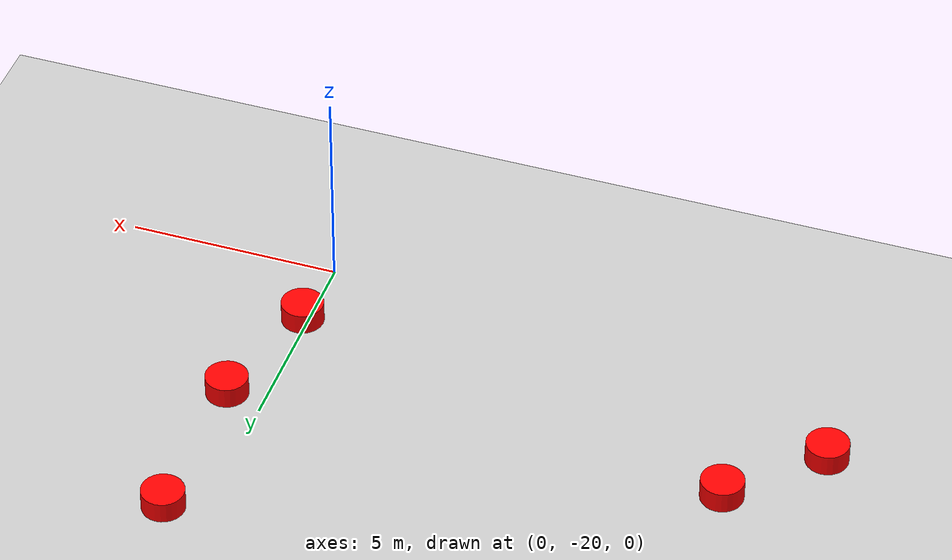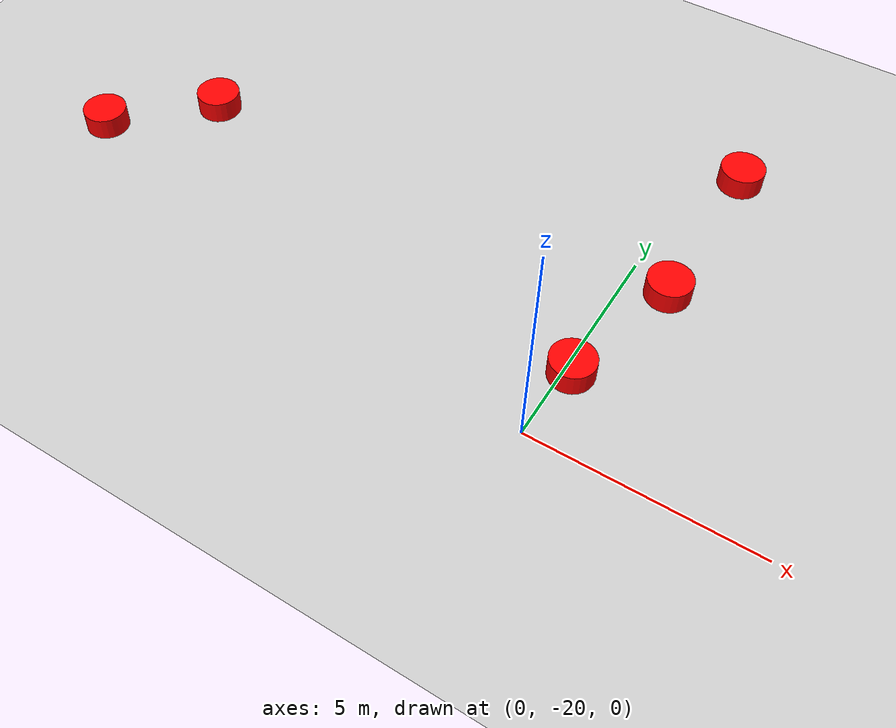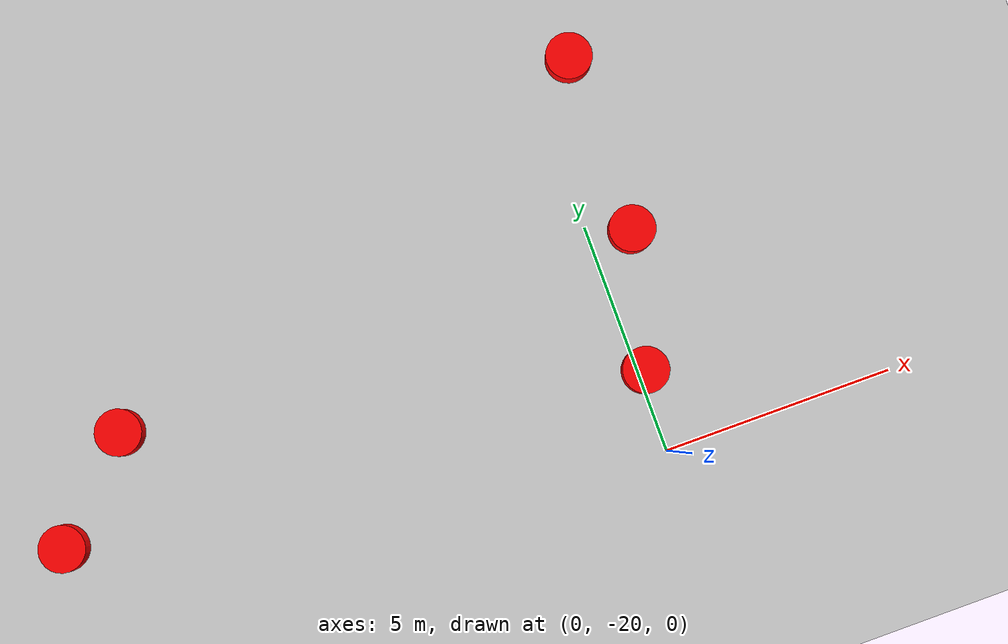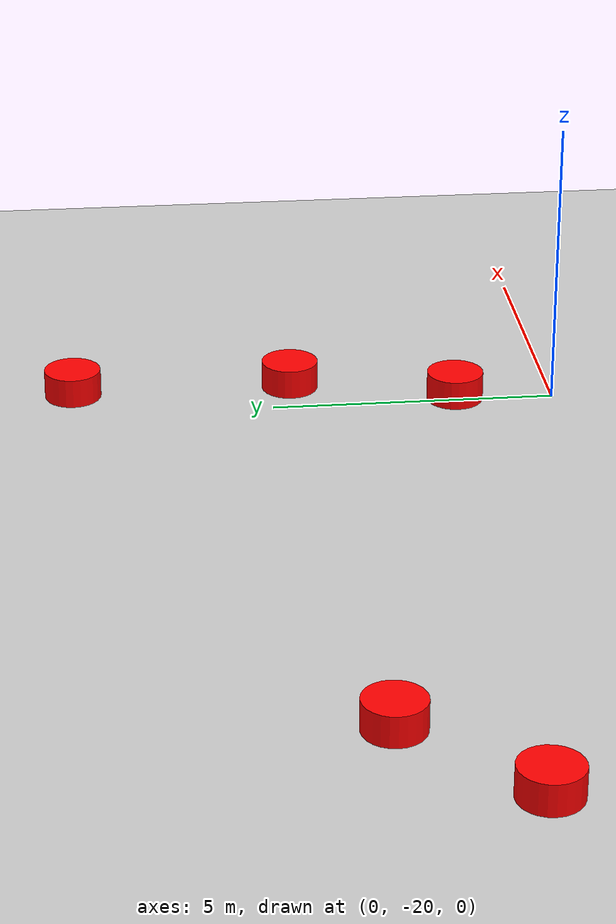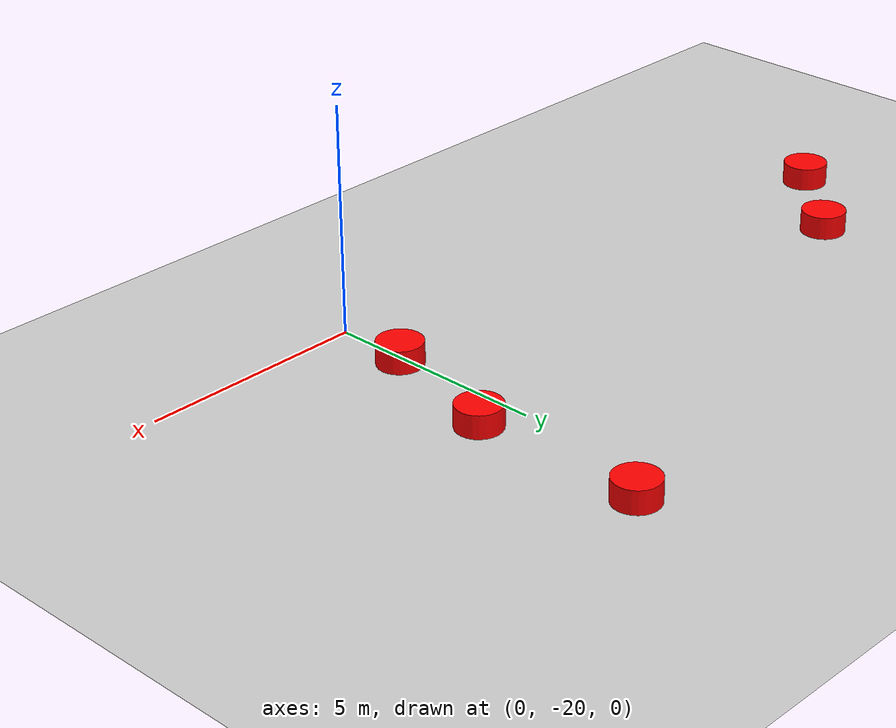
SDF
<sdf version="1.7">
 <world name="default">
  <model name="ground_plane">
   <static>1</static>
   <link name="link">
    <collision name="collision">
     <geometry><plane><normal>0 0 1</normal><size>100 100</size></plane></geometry>
     <surface><friction><ode><mu>100</mu><mu2>50</mu2></ode></friction></surface>
    </collision>
    <visual name="visual">
     <cast_shadows>0</cast_shadows>
     <geometry><plane><normal>0 0 1</normal><size>100 100</size></plane></geometry>
     <material>
      <script><uri>file://media/materials/scripts/gazebo.material</uri><name>Gazebo/Grey</name></script>
     </material>
    </visual>
   </link>
  </model>
  <model name="prognocol">
   <link name="link_1_clone_27">
    <inertial>
     <mass>1</mass>
     <inertia><ixx>0.145833</ixx><ixy>0</ixy><ixz>0</ixz><iyy>0.145833</iyy><iyz>0</iyz><izz>0.125</izz></inertia>
    </inertial>
    <pose>-7.8262 -13.2657 0.5 0 -0 0</pose>
    <visual name="visual">
     <geometry><cylinder><radius>0.5</radius><length>1</length></cylinder></geometry>
     <material>
      <lighting>1</lighting>
      <script><uri>file://media/materials/scripts/gazebo.material</uri><name>Gazebo/Grey</name></script>
      <shader type="pixel"><normal_map>__default__</normal_map></shader>
      <ambient>1 0 0 0</ambient>
      <diffuse>0.7 0.7 0.7 1</diffuse>
      <specular>0.01 0.01 0.01 1</specular>
      <emissive>0 0 0 1</emissive>
     </material>
    </visual>
    <collision name="collision">
     <geometry><cylinder><radius>0.0005</radius><length>1e-05</length></cylinder></geometry>
     <surface>
      <friction>
       <ode><mu>1</mu><mu2>1</mu2><fdir1>0 0 0</fdir1><slip1>0</slip1><slip2>0</slip2></ode>
       <torsional>
        <coefficient>1</coefficient>
        <patch_radius>0</patch_radius>
        <surface_radius>0</surface_radius>
        <use_patch_radius>1</use_patch_radius>
        <ode><slip>0</slip></ode>
       </torsional>
      </friction>
      <bounce><restitution_coefficient>0</restitution_coefficient><threshold>1e+06</threshold></bounce>
      <contact>
       <collide_without_contact>0</collide_without_contact>
       <collide_without_contact_bitmask>1</collide_without_contact_bitmask>
       <collide_bitmask>1</collide_bitmask>
       <ode>
        <soft_cfm>0</soft_cfm>
        <soft_erp>0.2</soft_erp>
        <kp>1e+13</kp>
        <kd>1</kd>
        <max_vel>0.01</max_vel>
        <min_depth>0</min_depth>
       </ode>
       <bullet>
        <split_impulse>1</split_impulse>
        <split_impulse_penetration_threshold>-0.01</split_impulse_penetration_threshold>
        <soft_cfm>0</soft_cfm>
        <soft_erp>0.2</soft_erp>
        <kp>1e+13</kp>
        <kd>1</kd>
       </bullet>
      </contact>
     </surface>
    </collision>
   </link>
   <link name="link_1_clone_28">
    <inertial>
     <mass>1</mass>
     <inertia><ixx>0.145833</ixx><ixy>0</ixy><ixz>0</ixz><iyy>0.145833</iyy><iyz>0</iyz><izz>0.125</izz></inertia>
    </inertial>
    <pose>-9.71176 -15.1523 0.5 0 -0 0</pose>
    <visual name="visual">
     <geometry><cylinder><radius>0.5</radius><length>1</length></cylinder></geometry>
     <material>
      <lighting>1</lighting>
      <script><uri>file://media/materials/scripts/gazebo.material</uri><name>Gazebo/Grey</name></script>
      <shader type="pixel"><normal_map>__default__</normal_map></shader>
      <ambient>1 0 0 0</ambient>
      <diffuse>0.7 0.7 0.7 1</diffuse>
      <specular>0.01 0.01 0.01 1</specular>
      <emissive>0 0 0 1</emissive>
     </material>
    </visual>
    <collision name="collision">
     <geometry><cylinder><radius>0.0005</radius><length>1e-05</length></cylinder></geometry>
     <surface>
      <friction>
       <ode><mu>1</mu><mu2>1</mu2><fdir1>0 0 0</fdir1><slip1>0</slip1><slip2>0</slip2></ode>
       <torsional>
        <coefficient>1</coefficient>
        <patch_radius>0</patch_radius>
        <surface_radius>0</surface_radius>
        <use_patch_radius>1</use_patch_radius>
        <ode><slip>0</slip></ode>
       </torsional>
      </friction>
      <bounce><restitution_coefficient>0</restitution_coefficient><threshold>1e+06</threshold></bounce>
      <contact>
       <collide_without_contact>0</collide_without_contact>
       <collide_without_contact_bitmask>1</collide_without_contact_bitmask>
       <collide_bitmask>1</collide_bitmask>
       <ode>
        <soft_cfm>0</soft_cfm>
        <soft_erp>0.2</soft_erp>
        <kp>1e+13</kp>
        <kd>1</kd>
        <max_vel>0.01</max_vel>
        <min_depth>0</min_depth>
       </ode>
       <bullet>
        <split_impulse>1</split_impulse>
        <split_impulse_penetration_threshold>-0.01</split_impulse_penetration_threshold>
        <soft_cfm>0</soft_cfm>
        <soft_erp>0.2</soft_erp>
        <kp>1e+13</kp>
        <kd>1</kd>
       </bullet>
      </contact>
     </surface>
    </collision>
   </link>
   <link name="link_1_clone_31">
    <inertial>
     <mass>1</mass>
     <inertia><ixx>0.145833</ixx><ixy>0</ixy><ixz>0</ixz><iyy>0.145833</iyy><iyz>0</iyz><izz>0.125</izz></inertia>
    </inertial>
    <pose>3.73761 -8.99319 0.5 0 -0 0</pose>
    <visual name="visual">
     <geometry><cylinder><radius>0.5</radius><length>1</length></cylinder></geometry>
     <material>
      <lighting>1</lighting>
      <script><uri>file://media/materials/scripts/gazebo.material</uri><name>Gazebo/Grey</name></script>
      <shader type="pixel"><normal_map>__default__</normal_map></shader>
      <ambient>1 0 0 0</ambient>
      <diffuse>0.7 0.7 0.7 1</diffuse>
      <specular>0.01 0.01 0.01 1</specular>
      <emissive>0 0 0 1</emissive>
     </material>
    </visual>
    <collision name="collision">
     <geometry><cylinder><radius>0.0005</radius><length>1e-05</length></cylinder></geometry>
     <surface>
      <friction>
       <ode><mu>1</mu><mu2>1</mu2><fdir1>0 0 0</fdir1><slip1>0</slip1><slip2>0</slip2></ode>
       <torsional>
        <coefficient>1</coefficient>
        <patch_radius>0</patch_radius>
        <surface_radius>0</surface_radius>
        <use_patch_radius>1</use_patch_radius>
        <ode><slip>0</slip></ode>
       </torsional>
      </friction>
      <bounce><restitution_coefficient>0</restitution_coefficient><threshold>1e+06</threshold></bounce>
      <contact>
       <collide_without_contact>0</collide_without_contact>
       <collide_without_contact_bitmask>1</collide_without_contact_bitmask>
       <collide_bitmask>1</collide_bitmask>
       <ode>
        <soft_cfm>0</soft_cfm>
        <soft_erp>0.2</soft_erp>
        <kp>1e+13</kp>
        <kd>1</kd>
        <max_vel>0.01</max_vel>
        <min_depth>0</min_depth>
       </ode>
       <bullet>
        <split_impulse>1</split_impulse>
        <split_impulse_penetration_threshold>-0.01</split_impulse_penetration_threshold>
        <soft_cfm>0</soft_cfm>
        <soft_erp>0.2</soft_erp>
        <kp>1e+13</kp>
        <kd>1</kd>
       </bullet>
      </contact>
     </surface>
    </collision>
   </link>
   <link name="link_1_clone_32">
    <inertial>
     <mass>1</mass>
     <inertia><ixx>0.145833</ixx><ixy>0</ixy><ixz>0</ixz><iyy>0.145833</iyy><iyz>0</iyz><izz>0.125</izz></inertia>
    </inertial>
    <pose>3.73761 -12.8894 0.5 0 -0 0</pose>
    <visual name="visual">
     <geometry><cylinder><radius>0.5</radius><length>1</length></cylinder></geometry>
     <material>
      <lighting>1</lighting>
      <script><uri>file://media/materials/scripts/gazebo.material</uri><name>Gazebo/Grey</name></script>
      <shader type="pixel"><normal_map>__default__</normal_map></shader>
      <ambient>1 0 0 0</ambient>
      <diffuse>0.7 0.7 0.7 1</diffuse>
      <specular>0.01 0.01 0.01 1</specular>
      <emissive>0 0 0 1</emissive>
     </material>
    </visual>
    <collision name="collision">
     <geometry><cylinder><radius>0.0005</radius><length>1e-05</length></cylinder></geometry>
     <surface>
      <friction>
       <ode><mu>1</mu><mu2>1</mu2><fdir1>0 0 0</fdir1><slip1>0</slip1><slip2>0</slip2></ode>
       <torsional>
        <coefficient>1</coefficient>
        <patch_radius>0</patch_radius>
        <surface_radius>0</surface_radius>
        <use_patch_radius>1</use_patch_radius>
        <ode><slip>0</slip></ode>
       </torsional>
      </friction>
      <bounce><restitution_coefficient>0</restitution_coefficient><threshold>1e+06</threshold></bounce>
      <contact>
       <collide_without_contact>0</collide_without_contact>
       <collide_without_contact_bitmask>1</collide_without_contact_bitmask>
       <collide_bitmask>1</collide_bitmask>
       <ode>
        <soft_cfm>0</soft_cfm>
        <soft_erp>0.2</soft_erp>
        <kp>1e+13</kp>
        <kd>1</kd>
        <max_vel>0.01</max_vel>
        <min_depth>0</min_depth>
       </ode>
       <bullet>
        <split_impulse>1</split_impulse>
        <split_impulse_penetration_threshold>-0.01</split_impulse_penetration_threshold>
        <soft_cfm>0</soft_cfm>
        <soft_erp>0.2</soft_erp>
        <kp>1e+13</kp>
        <kd>1</kd>
       </bullet>
      </contact>
     </surface>
    </collision>
   </link>
   <link name="link_1_clone_33">
    <inertial>
     <mass>1</mass>
     <inertia><ixx>0.145833</ixx><ixy>0</ixy><ixz>0</ixz><iyy>0.145833</iyy><iyz>0</iyz><izz>0.125</izz></inertia>
    </inertial>
    <pose>2.98374 -15.7798 0.5 0 -0 0</pose>
    <visual name="visual">
     <geometry><cylinder><radius>0.5</radius><length>1</length></cylinder></geometry>
     <material>
      <lighting>1</lighting>
      <script><uri>file://media/materials/scripts/gazebo.material</uri><name>Gazebo/Grey</name></script>
      <shader type="pixel"><normal_map>__default__</normal_map></shader>
      <ambient>1 0 0 0</ambient>
      <diffuse>0.7 0.7 0.7 1</diffuse>
      <specular>0.01 0.01 0.01 1</specular>
      <emissive>0 0 0 1</emissive>
     </material>
    </visual>
    <collision name="collision">
     <geometry><cylinder><radius>0.0005</radius><length>1e-05</length></cylinder></geometry>
     <surface>
      <friction>
       <ode><mu>1</mu><mu2>1</mu2><fdir1>0 0 0</fdir1><slip1>0</slip1><slip2>0</slip2></ode>
       <torsional>
        <coefficient>1</coefficient>
        <patch_radius>0</patch_radius>
        <surface_radius>0</surface_radius>
        <use_patch_radius>1</use_patch_radius>
        <ode><slip>0</slip></ode>
       </torsional>
      </friction>
      <bounce><restitution_coefficient>0</restitution_coefficient><threshold>1e+06</threshold></bounce>
      <contact>
       <collide_without_contact>0</collide_without_contact>
       <collide_without_contact_bitmask>1</collide_without_contact_bitmask>
       <collide_bitmask>1</collide_bitmask>
       <ode>
        <soft_cfm>0</soft_cfm>
        <soft_erp>0.2</soft_erp>
        <kp>1e+13</kp>
        <kd>1</kd>
        <max_vel>0.01</max_vel>
        <min_depth>0</min_depth>
       </ode>
       <bullet>
        <split_impulse>1</split_impulse>
        <split_impulse_penetration_threshold>-0.01</split_impulse_penetration_threshold>
        <soft_cfm>0</soft_cfm>
        <soft_erp>0.2</soft_erp>
        <kp>1e+13</kp>
        <kd>1</kd>
       </bullet>
      </contact>
     </surface>
    </collision>
   </link>
   <static>0</static>
   <pose>-2.84122 -2.48393 -0.499947 -1.4e-05 0.000244 0</pose>
  </model>
 </world>
</sdf>
